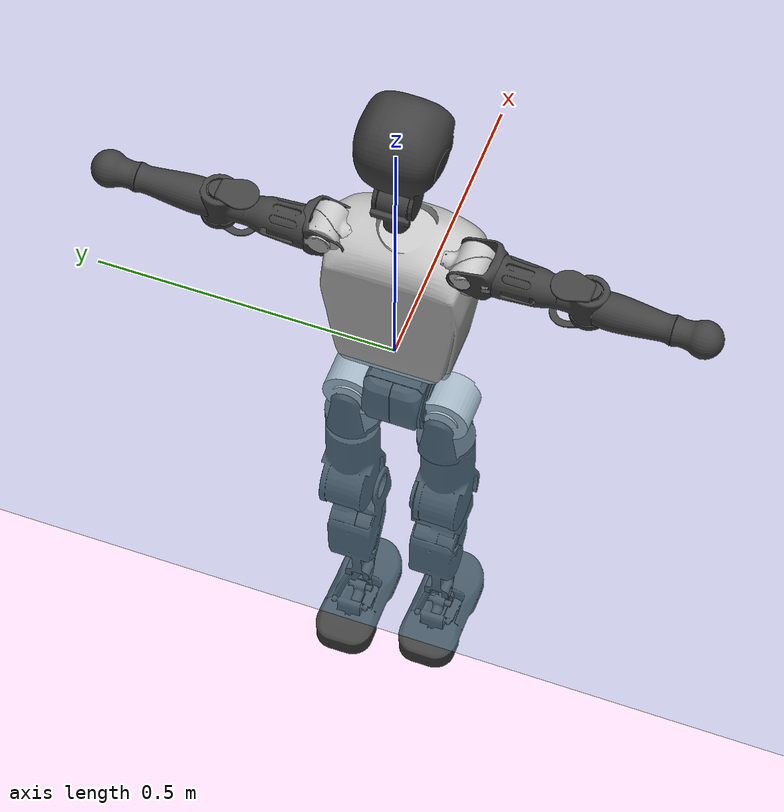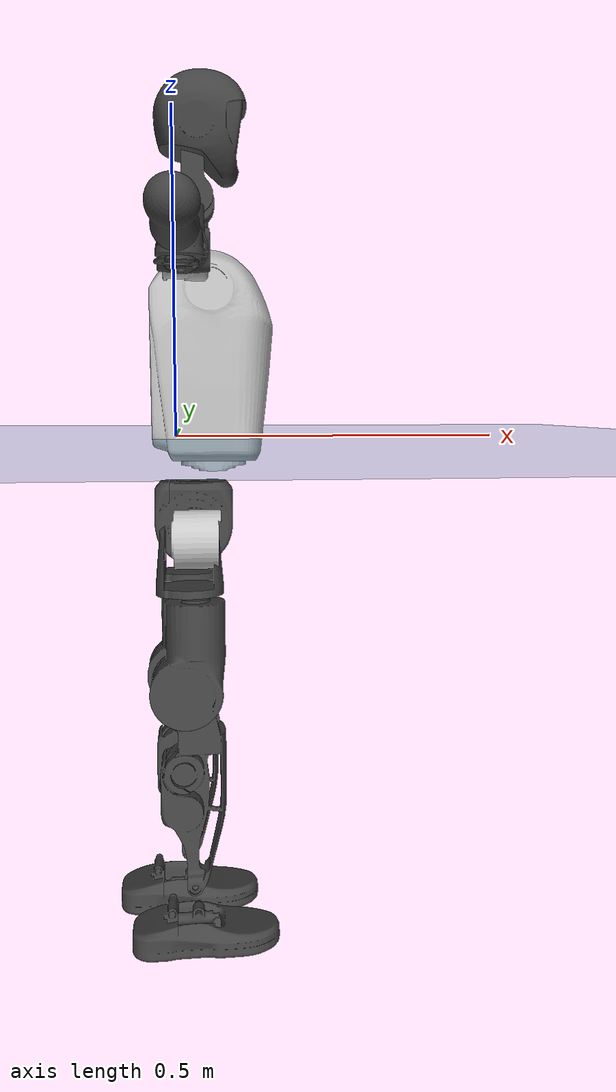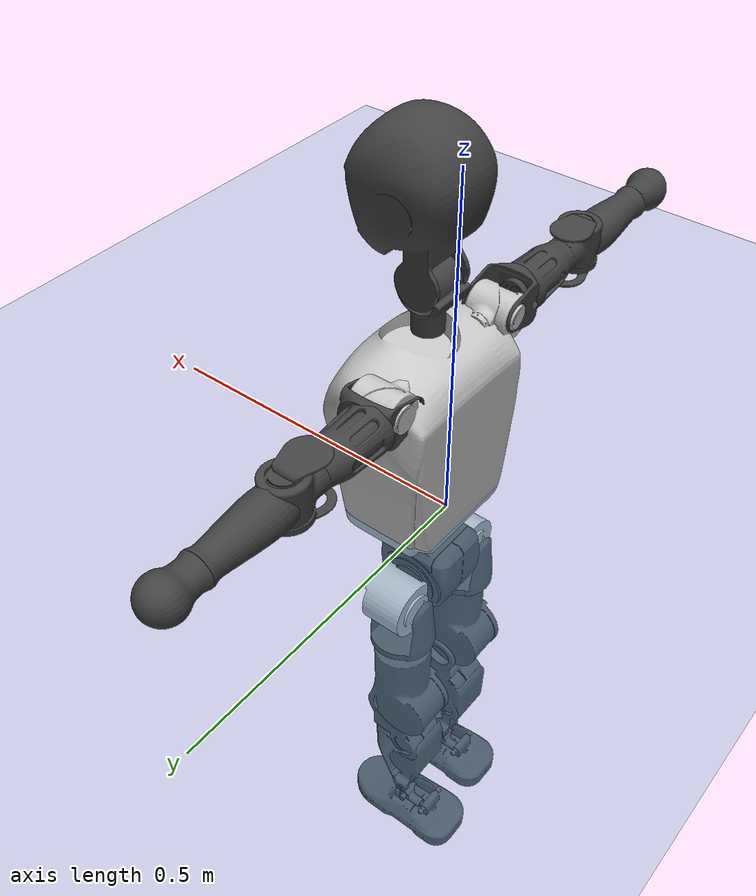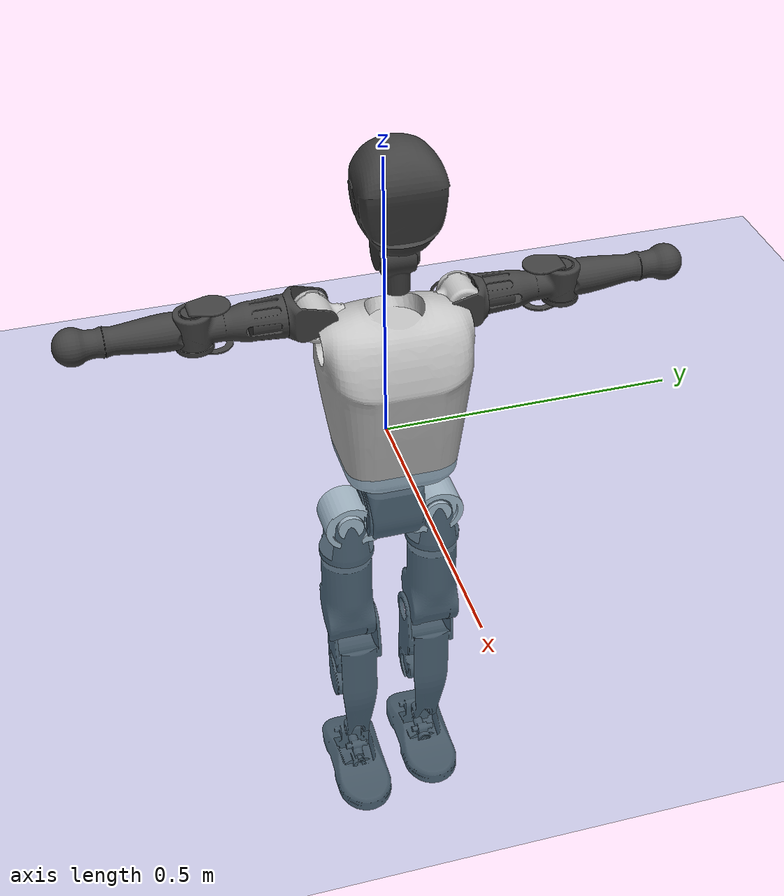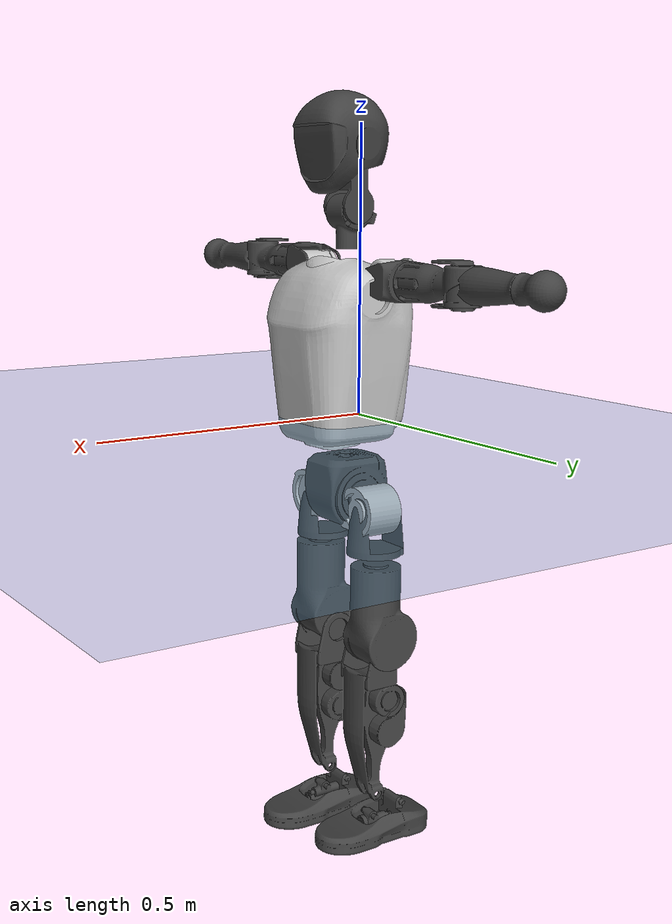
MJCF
<mujoco model="T1">
  <compiler angle="radian" assetdir="assets" balanceinertia="true" inertiafromgeom="false"/>

  <option timestep="0.005" density="1.2" viscosity="2e-05"/>

  <size nkey="1"/>

  <visual>
    <quality shadowsize="8192"/>
    <map shadowclip="0.5"/>
  </visual>

  <default>
    <default class="/">
      <joint armature="0.01" damping="0.01" frictionloss="0.1"/>
      <geom contype="0" conaffinity="0" group="1" solref="-1000 -80"/>
      <site size="0.01 0.005 0.005" group="5"/>
      <general forcelimited="true" biastype="affine" gainprm="25" biasprm="0 -25 -0.6"/>
      <default class="t1">
        <geom rgba="0.25 0.25 0.25 1"/>
        <default class="visual">
          <geom type="mesh" group="2"/>
        </default>
        <default class="collision">
          <geom group="3"/>
        </default>
        <default class="foot">
          <geom size="0.1115 0.05 0.015" type="box" condim="6" group="4" priority="1" solimp="0.015 1 0.015"/>
        </default>
        <default class="reward_collision_sphere">
          <geom group="5" rgba="1 0 0 1"/>
        </default>
      </default>
    </default>
  </default>

  <asset>
    <texture type="skybox" colorspace="auto" name="//unnamed_texture_0" builtin="gradient" rgb1="0.95 0.95 0.95" rgb2="0.95 0.95 0.95" width="100" height="600"/>
    <texture type="2d" colorspace="auto" name="texplane" builtin="checker" rgb1="0.345 0.575 0.748" rgb2="0.345 0.575 0.748" markrgb="1 1 1" width="512" height="512"/>
    <material name="MatPlane" class="/" texture="texplane" texuniform="true" texrepeat="2 2" specular="0.9"/>
    <mesh name="Trunk" class="/" file="Trunk.stl"/>
    <mesh name="H1" class="/" file="H1.stl"/>
    <mesh name="H2" class="/" file="H2.stl"/>
    <mesh name="AL1" class="/" file="AL1.stl"/>
    <mesh name="AL2" class="/" file="AL2.stl"/>
    <mesh name="AL3" class="/" file="AL3.stl"/>
    <mesh name="left_hand_link" class="/" file="left_hand_link.stl"/>
    <mesh name="AR1" class="/" file="AR1.stl"/>
    <mesh name="AR2" class="/" file="AR2.stl"/>
    <mesh name="AR3" class="/" file="AR3.stl"/>
    <mesh name="right_hand_link" class="/" file="right_hand_link.stl"/>
    <mesh name="Waist" class="/" file="Waist.stl"/>
    <mesh name="Hip_Pitch_Left" class="/" file="Hip_Pitch_Left.stl"/>
    <mesh name="Hip_Roll_Left" class="/" file="Hip_Roll_Left.stl"/>
    <mesh name="Hip_Yaw_Left" class="/" file="Hip_Yaw_Left.stl"/>
    <mesh name="Shank_Left" class="/" file="Shank_Left.stl"/>
    <mesh name="Ankle_Cross_Left" class="/" file="Ankle_Cross_Left.stl"/>
    <mesh name="left_foot_link" class="/" file="left_foot_link.stl"/>
    <mesh name="Hip_Pitch_Right" class="/" file="Hip_Pitch_Right.stl"/>
    <mesh name="Hip_Roll_Right" class="/" file="Hip_Roll_Right.stl"/>
    <mesh name="Hip_Yaw_Right" class="/" file="Hip_Yaw_Right.stl"/>
    <mesh name="Shank_Right" class="/" file="Shank_Right.stl"/>
    <mesh name="Ankle_Cross_Right" class="/" file="Ankle_Cross_Right.stl"/>
    <mesh name="right_foot_link" class="/" file="right_foot_link.stl"/>
  </asset>

  <worldbody>
    <geom name="floor" class="/" size="100 100 0.125" type="plane" group="0" material="MatPlane"/>
    <light name="toplight_shadow" class="/" pos="0 0 5" dir="0.0990148 0.0990148 -0.990148" type="directional" ambient="0.04 0.04 0.04" diffuse="0.55 0.55 0.55" specular="0.12 0.12 0.12"/>
    <light name="toplight_fill" class="/" pos="0 0 5" dir="0.0990148 0.0990148 -0.990148" type="directional" castshadow="false" ambient="0.04 0.04 0.04" diffuse="0.3 0.3 0.3" specular="0.08 0.08 0.08"/>
    <body name="trunk" childclass="t1" pos="-0.00516323 0.000842587 -0.00177294" quat="1 8.55863e-05 -0.000220335 -0.000115033">
      <inertial pos="0.0233974 -0.00211773 0.125403" quat="0.999926 0.002492 -0.0101132 -0.00626071" mass="5.04212" diaginertia="0.00125166 0.0184426 0.111904"/>
      <joint name="//unnamed_joint_0" type="free" armature="0" damping="0" frictionloss="0"/>
      <geom name="//unnamed_geom_1" class="visual" rgba="0.76 0.76 0.76 1" mesh="Trunk"/>
      <geom name="//unnamed_geom_2" class="collision" size="0.0586588 0.0782118 0.117318" pos="0.0259606 0 0.139176" type="box"/>
      <geom name="//unnamed_geom_3" class="reward_collision_sphere" size="0.0899435" pos="0.0259606 0 0.11598"/>
      <geom name="//unnamed_geom_4" class="reward_collision_sphere" size="0.0117318" pos="0.0259606 0.0640797 0"/>
      <geom name="//unnamed_geom_5" class="reward_collision_sphere" size="0.0117318" pos="0.0259606 -0.0640797 0"/>
      <geom name="//unnamed_geom_6" class="reward_collision_sphere" size="0.0117318" pos="0.0259606 0.0806651 0.208763"/>
      <geom name="//unnamed_geom_7" class="reward_collision_sphere" size="0.0117318" pos="0.0259606 -0.0806651 0.208763"/>
      <site name="imu" pos="0.0466158 0.012531 -0.0302328" size="0.00782118"/>
      <camera name="track" pos="0 -1.50776 0" quat="0.707107 0.707107 0 0" mode="trackcom"/>
      <camera name="ego_camera" pos="0.0527866 0 0.487115" quat="-0.5 -0.5 0.5 0.5"/>
      <body name="H1" pos="0.037765 0.00970306 0.292527" quat="1 0.000327839 -0.00010905 3.26772e-05">
        <inertial pos="0.00401057 -0.00389214 0.0697144" quat="0.767244 -0.0493171 0.0318073 0.638665" mass="0.189505" diaginertia="3.66556e-06 5.99364e-05 0.000301111"/>
        <joint name="AAHead_yaw" pos="0 0 0" axis="-0.0279454 -0.0349781 0.998997" range="-1.6032 1.54467" armature="0.00496878" damping="0" frictionloss="0.0630136"/>
        <geom name="//unnamed_geom_8" class="visual" mesh="H1"/>
        <body name="H2" pos="-0.00196023 -0.00201551 0.071544" quat="0.999994 -0.000231673 0.00162547 -0.00310371">
          <inertial pos="0.00243562 0.0111058 0.112883" quat="0.9885 0.105714 -0.0752041 -0.077698" mass="0.277893" diaginertia="3.19905e-05 0.00048319 0.00349115"/>
          <joint name="Head_pitch" pos="0 0 0" axis="-0.00283647 -0.999996 -0.000439375" stiffness="0.0182121" range="-1.23529 0.336979" armature="0.00594564" damping="0.00111909" frictionloss="0.0784199"/>
          <geom name="//unnamed_geom_9" class="visual" mesh="H2"/>
          <geom name="//unnamed_geom_10" class="collision" size="0.0625694" pos="0.00432677 0 0.127578"/>
          <geom name="//unnamed_geom_11" class="reward_collision_sphere" size="0.0703906" pos="0.00865353 0 0.11598"/>
        </body>
      </body>
      <body name="AL1" pos="0.0228519 0.0715184 0.249467" quat="1 6.55861e-05 0.000734411 0.000133478">
        <inertial pos="0.00957998 0.0244599 0.00655435" quat="0.505065 0.494876 -0.503279 0.496707" mass="0.231363" diaginertia="1.86312e-05 0.000284399 0.000571164"/>
        <joint name="Left_Shoulder_Pitch" pos="0 0 0" axis="-0.0267213 0.999638 -0.00313242" range="-3.36257 1.2252" armature="0.00614013" damping="0" frictionloss="0.0997524"/>
        <geom name="//unnamed_geom_12" class="visual" rgba="0.76 0.76 0.76 1" mesh="AL1"/>
        <body name="AL2" pos="0.00268367 0.0277058 -0.00524209" quat="0.999999 0.000403521 -0.000852972 0.000358317">
          <inertial pos="0.00219368 0.0288287 -0.00368702" quat="0.488454 0.512308 -0.486702 0.511933" mass="0.0735708" diaginertia="4.94092e-06 6.49416e-05 0.000348032"/>
          <joint name="Left_Shoulder_Roll" pos="0 0 0" axis="-0.999929 0.00463819 0.0109722" range="-1.67755 1.90355" armature="0.00764986" damping="0" frictionloss="0.0729136"/>
          <geom name="//unnamed_geom_13" class="visual" mesh="AL2"/>
          <body name="AL3" pos="-0.00928939 0.0445031 -0.000573479" quat="0.999997 0.00151981 0.000936605 0.0015238">
            <inertial pos="-0.000855342 0.0642203 -0.00714393" quat="0.710812 0.702565 -0.0230755 -0.0248214" mass="0.479211" diaginertia="0.00017597 0.00308892 0.00129737"/>
            <joint name="Left_Elbow_Pitch" pos="0 0 0" axis="0.00198658 -0.999973 -0.00708986" stiffness="0.00605164" range="-2.30318 2.12056" armature="0.010842" damping="0.0182748" frictionloss="0.0709758"/>
            <geom name="//unnamed_geom_14" class="visual" mesh="AL3"/>
            <geom name="//unnamed_geom_15" class="collision" size="0.0234635 0.0586588" pos="0 0.037694 0" quat="0.707105 0.707108 0 0" type="cylinder"/>
            <geom name="//unnamed_geom_16" class="reward_collision_sphere" size="0.0281562"/>
            <body name="left_hand_link" pos="-0.00169392 0.110903 0.00201079" quat="0.999995 0.00277228 0.00155884 0.000399904">
              <inertial pos="-0.0110935 0.0901375 -0.000334772" quat="0.70728 0.706878 0.00848386 -0.00251235" mass="0.164002" diaginertia="0.000118706 0.00193507 0.000491618"/>
              <joint name="Left_Elbow_Yaw" pos="0 0 0" axis="0.0174269 -0.0194455 0.999659" range="-2.51339 0.0906233" armature="0.00504473" damping="0" frictionloss="0.0516981"/>
              <geom name="//unnamed_geom_17" class="visual" mesh="left_hand_link"/>
              <geom name="//unnamed_geom_18" class="collision" size="0.0234635 0.0684353" pos="0 0.0980043 0" quat="0.707105 0.707108 0 0" type="cylinder"/>
              <geom name="//unnamed_geom_19" class="reward_collision_sphere" size="0.0391059"/>
              <geom name="//unnamed_geom_20" class="reward_collision_sphere" size="0.0273741" pos="0 0.0829267 0"/>
              <geom name="//unnamed_geom_21" class="reward_collision_sphere" size="0.0273741" pos="0 0.162084 0"/>
            </body>
          </body>
        </body>
      </body>
      <body name="AR1" pos="0.0233903 -0.0716512 0.255469" quat="0.999998 -0.00181924 -0.000287482 0.000128177">
        <inertial pos="-0.0035481 -0.0352621 -0.000482235" quat="0.502723 0.494278 -0.505427 0.497497" mass="0.24652" diaginertia="2.09732e-05 0.000308107 0.000595107"/>
        <joint name="Right_Shoulder_Pitch" pos="0 0 0" axis="-0.00153286 -0.999997 -0.00183501" range="-1.1854 3.28627" armature="0.00593492" damping="0.0517112" frictionloss="0.0946798"/>
        <geom name="//unnamed_geom_22" class="visual" rgba="0.76 0.76 0.76 1" mesh="AR1"/>
        <body name="AR2" pos="-0.00194748 -0.0381515 0.00879982" quat="1 1.08726e-05 0.000209954 -8.4424e-05">
          <inertial pos="0.00577743 -0.0351902 0.00992423" quat="0.513046 0.489558 -0.515464 0.481055" mass="0.0729982" diaginertia="5.65162e-06 8.81377e-05 0.000335736"/>
          <joint name="Right_Shoulder_Roll" pos="0 0 0" axis="-0.999925 -0.00427482 -0.0114612" stiffness="0.039177" range="-1.94495 1.55347" armature="0.0068615" damping="0" frictionloss="0.0708122"/>
          <geom name="//unnamed_geom_23" class="visual" mesh="AR2"/>
          <body name="AR3" pos="-0.00265772 -0.0506379 -0.00122758" quat="1 0.000685454 0.000176778 -0.000653978">
            <inertial pos="0.00895735 -0.0660846 -0.000706067" quat="0.698175 0.715808 0.0128279 0.0025939" mass="0.492214" diaginertia="0.000195943 0.00314028 0.00116028"/>
            <joint name="Right_Elbow_Pitch" pos="0 0 0" axis="0.0175296 0.999846 -0.000418191" stiffness="0.0338964" range="-2.27738 2.36877" armature="0.00729356" damping="0.00367954" frictionloss="0.113972"/>
            <geom name="//unnamed_geom_24" class="visual" mesh="AR3"/>
            <geom name="//unnamed_geom_25" class="collision" size="0.0234635 0.0586588" pos="0 -0.037694 0" quat="0.707105 0.707108 0 0" type="cylinder"/>
            <geom name="//unnamed_geom_26" class="reward_collision_sphere" size="0.0281562"/>
            <body name="right_hand_link" pos="-0.00491 -0.115119 0.00037231" quat="0.999999 0.00107018 -0.000406059 0.00013544">
              <inertial pos="0.00136594 -0.082979 -0.00704789" quat="0.705032 0.709175 -0.000776852 -0.000989008" mass="0.151168" diaginertia="0.000122139 0.00215603 0.000460618"/>
              <joint name="Right_Elbow_Yaw" pos="0 0 0" axis="0.00394796 0.0023406 0.999989" range="-0.090243 2.47236" armature="0.00830614" damping="0.0141218" frictionloss="0.111719"/>
              <geom name="//unnamed_geom_27" class="visual" mesh="right_hand_link"/>
              <geom name="//unnamed_geom_28" class="collision" size="0.0234635 0.0684353" pos="0 -0.0980043 0" quat="0.707105 0.707108 0 0" type="cylinder"/>
              <geom name="//unnamed_geom_29" class="reward_collision_sphere" size="0.0391059"/>
              <geom name="//unnamed_geom_30" class="reward_collision_sphere" size="0.0273741" pos="0 -0.0829267 0"/>
              <geom name="//unnamed_geom_31" class="reward_collision_sphere" size="0.0273741" pos="0 -0.162084 0"/>
            </body>
          </body>
        </body>
      </body>
      <body name="Waist" pos="0.031157 -0.00283079 -0.134484" quat="1 -7.96899e-05 7.02623e-05 -9.82525e-05">
        <inertial pos="0.0030724 -0.00232334 0.0069357" quat="0.982513 -0.0130452 -0.184929 0.0172959" mass="1.34527" diaginertia="7.16734e-05 0.00131235 0.00874885"/>
        <joint name="Waist" pos="0 0 0" axis="-0.0286095 0.0181335 0.999426" range="-1.48091 1.65674" armature="0.00834572" damping="0" frictionloss="0.111417"/>
        <geom name="//unnamed_geom_32" class="visual" mesh="Waist"/>
        <body name="Hip_Pitch_Left" pos="0.00170179 0.0789698 0.00106081" quat="0.999999 -0.00112183 -0.000268898 -0.000678504">
          <inertial pos="7.27509e-05 0.00138665 -0.0228752" quat="0.972252 0.233543 0.0106865 -0.0083854" mass="0.480979" diaginertia="2.82454e-05 0.000317632 0.00228434"/>
          <joint name="Left_Hip_Pitch" pos="0 0 0" axis="-0.00298994 0.999992 0.00252367" range="-1.77266 1.56418" armature="0.00593952" damping="0" frictionloss="0.0805703"/>
          <geom name="//unnamed_geom_33" class="visual" rgba="0.76 0.76 0.76 1" mesh="Hip_Pitch_Left"/>
          <body name="Hip_Roll_Left" pos="-0.00881566 -0.000177601 -0.0223703" quat="0.999992 0.000700327 -0.00316321 0.00230868">
            <inertial pos="-0.00470479 0.0021352 -0.0629093" quat="0.709892 0.00259781 -0.00467489 0.70429" mass="0.224934" diaginertia="3.35836e-05 0.000416141 0.00122498"/>
            <joint name="Left_Hip_Roll" pos="0 0 0" axis="-0.999283 -0.0364729 -0.0101238" range="-1.75615 0.163905" armature="0.00949025" damping="0.0251723" frictionloss="0.0870337"/>
            <geom name="//unnamed_geom_34" class="visual" mesh="Hip_Roll_Left"/>
            <geom name="//unnamed_geom_35" class="reward_collision_sphere" size="0.0430165"/>
            <body name="Hip_Yaw_Left" pos="-0.00399639 0.00125598 -0.0990802" quat="0.999992 -0.00366516 0.00163762 -0.000651557">
              <inertial pos="0.00649442 0.000117339 -0.102314" quat="0.697827 -0.0337241 -0.0327227 0.714723" mass="1.00277" diaginertia="0.000342111 0.00625232 0.0055131"/>
              <joint name="Left_Hip_Yaw" pos="0 0 0" axis="-0.00377214 0.0010227 -0.999992" stiffness="0.0418355" range="-1.20359 0.844223" armature="0.00763516" damping="0.0118012" frictionloss="0.0501252"/>
              <geom name="//unnamed_geom_36" class="visual" mesh="Hip_Yaw_Left"/>
              <geom name="//unnamed_geom_37" class="collision" size="0.0391059 0.0625694" type="cylinder"/>
              <body name="Shank_Left" pos="-0.00555975 -0.00877212 -0.153702" quat="1 0.000166333 -2.08967e-05 9.61252e-05">
                <inertial pos="0.00750706 -0.00061966 -0.145413" quat="0.996134 0.0329607 -0.0615804 0.0532837" mass="0.894872" diaginertia="0.000540686 0.00743402 0.00372317"/>
                <joint name="Left_Knee_Pitch" pos="0 0 0" axis="0.0213902 0.999327 -0.0297987" range="0.0337 2.21124" armature="0.0100568" damping="0.00731804" frictionloss="0.0413999"/>
                <geom name="//unnamed_geom_38" class="visual" mesh="Shank_Left"/>
                <geom name="//unnamed_geom_39" class="collision" size="0.0391059 0.0586588" pos="0 0 -0.139176" type="cylinder"/>
                <geom name="//unnamed_geom_40" class="reward_collision_sphere" size="0.0508376"/>
                <body name="Ankle_Cross_Left" pos="0.000363959 -0.00140776 -0.327463" quat="1 0.000250855 0.000201472 -0.000375169">
                  <inertial pos="-0.000115731 8.84546e-05 -0.0107768" quat="0.447941 0.546656 0.553201 0.441005" mass="0.0334407" diaginertia="4.0269e-07 5.98023e-06 2.27194e-05"/>
                  <joint name="Left_Ankle_Pitch" pos="0 0 0" axis="0.0209124 0.999526 0.0225993" stiffness="0.00767083" range="-0.884485 0.456722" armature="0.00384472" damping="0.00413904" frictionloss="0.0894431"/>
                  <geom name="//unnamed_geom_41" class="visual" mesh="Ankle_Cross_Left"/>
                  <body name="left_foot_link" pos="-0.0102821 9.36106e-05 -0.0112639" quat="1 -8.4839e-05 1.46993e-05 -3.20148e-05">
                    <inertial pos="0.00917266 -0.00514921 -0.010321" quat="0.00343254 0.618084 -0.00182644 0.786102" mass="0.331929" diaginertia="4.06587e-05 0.000589106 0.00511821"/>
                    <joint name="Left_Ankle_Roll" pos="0 0 0" axis="-0.999927 0.010974 -0.004992" range="-0.5278 0.506352" armature="0.00753336" damping="0.0584599" frictionloss="0.0743578"/>
                    <geom name="//unnamed_geom_42" class="visual" mesh="left_foot_link"/>
                    <geom name="left_foot" class="foot" size="0.1001 0.0510412 0.0135152" pos="0.00432677 0 -0.017397"/>
                    <geom name="//unnamed_geom_44" class="reward_collision_sphere" size="0.0406701" pos="0.00432677 0 -0.017397"/>
                    <geom name="//unnamed_geom_45" class="reward_collision_sphere" size="0.0234635" pos="0.0411043 -0.0173392 -0.017397"/>
                    <geom name="//unnamed_geom_46" class="reward_collision_sphere" size="0.0234635" pos="-0.0302874 -0.0173392 -0.017397"/>
                    <site name="left_foot" class="foot" pos="0.00432677 0 -0.017397" size="0.00782118"/>
                  </body>
                </body>
              </body>
            </body>
          </body>
        </body>
        <body name="Hip_Pitch_Right" pos="0.00458101 -0.0780456 0.00513419" quat="1 -0.000299892 -0.000226873 -0.000210198">
          <inertial pos="-0.00064424 0.00584042 -0.0131688" quat="0.973616 -0.227943 0.0101505 -0.00323374" mass="0.494464" diaginertia="3.0573e-05 0.00031574 0.00251215"/>
          <joint name="Right_Hip_Pitch" pos="0 0 0" axis="0.00429457 -0.999903 -0.0132594" stiffness="0.0118754" range="-1.34831 1.60562" armature="0.00897289" damping="0" frictionloss="0.113752"/>
          <geom name="//unnamed_geom_47" class="visual" rgba="0.76 0.76 0.76 1" mesh="Hip_Pitch_Right"/>
          <body name="Hip_Roll_Right" pos="-0.00931351 -4.24113e-06 -0.0244776" quat="0.999998 0.00144561 -0.000220918 -0.00149457">
            <inertial pos="0.00163134 0.00656509 -0.0691293" quat="0.705503 -0.00918783 -0.00910607 0.708589" mass="0.200814" diaginertia="2.84817e-05 0.000412842 0.00104638"/>
            <joint name="Right_Hip_Roll" pos="0 0 0" axis="-0.99897 0.0409939 -0.0194638" range="-0.17819 1.5696" armature="0.00994371" damping="0" frictionloss="0.079465"/>
            <geom name="//unnamed_geom_48" class="visual" mesh="Hip_Roll_Right"/>
            <geom name="//unnamed_geom_49" class="reward_collision_sphere" size="0.0430165"/>
            <body name="Hip_Yaw_Right" pos="0.00479317 -0.00225626 -0.0879309" quat="1 2.09921e-05 -6.48033e-05 -1.09239e-05">
              <inertial pos="-0.00661031 -0.00869537 -0.0989887" quat="0.699193 -0.0797746 -0.020739 0.710166" mass="1.03311" diaginertia="0.000382773 0.00633115 0.00553445"/>
              <joint name="Right_Hip_Yaw" pos="0 0 0" axis="0.00464044 0.00116079 -0.999989" stiffness="0.00469804" range="-0.984244 0.989136" armature="0.00737808" damping="0.000369413" frictionloss="0.0799629"/>
              <geom name="//unnamed_geom_50" class="visual" mesh="Hip_Yaw_Right"/>
              <geom name="//unnamed_geom_51" class="collision" size="0.0391059 0.0625694" type="cylinder"/>
              <body name="Shank_Right" pos="-0.00570948 0.00923741 -0.162289" quat="1 0.000544809 -0.000560872 0.000125729">
                <inertial pos="0.00719392 -0.0110194 -0.139243" quat="0.998156 0.0294681 -0.0227405 -0.0479499" mass="0.786219" diaginertia="0.000587841 0.00922994 0.00432722"/>
                <joint name="Right_Knee_Pitch" pos="0 0 0" axis="-7.59443e-06 -1 -2.60659e-06" range="-2.26514 0.0226959" armature="0.00769964" damping="0.00755588" frictionloss="0.0895064"/>
                <geom name="//unnamed_geom_52" class="visual" mesh="Shank_Right"/>
                <geom name="//unnamed_geom_53" class="collision" size="0.0391059 0.0586588" pos="0 0 -0.139176" type="cylinder"/>
                <geom name="//unnamed_geom_54" class="reward_collision_sphere" size="0.0508376"/>
                <body name="Ankle_Cross_Right" pos="0.0044251 -0.0014911 -0.324749" quat="1 0.000713906 -3.21432e-05 0.000585755">
                  <inertial pos="-0.000831544 0.00760126 -0.0100763" quat="0.451929 0.545271 0.520147 0.477374" mass="0.0338557" diaginertia="4.29662e-07 7.771e-06 2.56102e-05"/>
                  <joint name="Right_Ankle_Pitch" pos="0 0 0" axis="0.00617444 -0.999547 -0.0294621" range="-0.417288 0.869914" armature="0.00536294" damping="0.0480883" frictionloss="0.0707009"/>
                  <geom name="//unnamed_geom_55" class="visual" mesh="Ankle_Cross_Right"/>
                  <body name="right_foot_link" pos="0.00182508 -0.00235044 -0.0223598" quat="1 -2.944e-06 7.85137e-05 5.23832e-05">
                    <inertial pos="0.000253353 -0.00194478 -0.0187802" quat="0.00168947 0.605736 0.012223 0.79557" mass="0.324945" diaginertia="3.66693e-05 0.000566903 0.00444929"/>
                    <joint name="Right_Ankle_Roll" pos="0 0 0" axis="-0.999945 0.00847296 0.00612919" range="-0.477236 0.536409" armature="0.00798452" damping="0" frictionloss="0.0987206"/>
                    <geom name="//unnamed_geom_56" class="visual" mesh="right_foot_link"/>
                    <geom name="right_foot" class="foot" size="0.0932335 0.0416453 0.0109612" pos="0.00432677 0 -0.017397"/>
                    <geom name="//unnamed_geom_58" class="reward_collision_sphere" size="0.0312847"/>
                    <geom name="//unnamed_geom_59" class="reward_collision_sphere" size="0.0234635" pos="0.00432677 0 -0.017397"/>
                    <geom name="//unnamed_geom_60" class="reward_collision_sphere" size="0.0234635" pos="0.0411043 0.0173392 -0.017397"/>
                    <geom name="//unnamed_geom_61" class="reward_collision_sphere" size="0.0234635" pos="-0.0302874 0.0173392 -0.017397"/>
                    <site name="right_foot" class="foot" pos="0.00432677 0 -0.017397" size="0.00782118"/>
                  </body>
                </body>
              </body>
            </body>
          </body>
        </body>
      </body>
    </body>
  </worldbody>

  <contact>
    <pair class="/" geom1="floor" geom2="left_foot" name="//unnamed_contact_0"/>
    <pair class="/" geom1="floor" geom2="right_foot" name="//unnamed_contact_1"/>
  </contact>

  <actuator>
    <general name="AAHead_yaw" class="/" joint="AAHead_yaw" forcerange="-4.33149 4.33149" gainprm="18.5808" biasprm="0 -18.5808 -0.551188"/>
    <general name="Head_pitch" class="/" joint="Head_pitch" forcerange="-5.53915 5.53915" gainprm="18.5808" biasprm="0 -18.5808 -0.551188"/>
    <general name="Left_Shoulder_Pitch" class="/" joint="Left_Shoulder_Pitch" forcerange="-15.0372 15.0372" gainprm="18.5808" biasprm="0 -18.5808 -0.551188"/>
    <general name="Left_Shoulder_Roll" class="/" joint="Left_Shoulder_Roll" forcerange="-13.0045 13.0045" gainprm="18.5808" biasprm="0 -18.5808 -0.551188"/>
    <general name="Left_Elbow_Pitch" class="/" joint="Left_Elbow_Pitch" forcerange="-10.8738 10.8738" gainprm="18.5808" biasprm="0 -18.5808 -0.551188"/>
    <general name="Left_Elbow_Yaw" class="/" joint="Left_Elbow_Yaw" forcerange="-11.9937 11.9937" gainprm="18.5808" biasprm="0 -18.5808 -0.551188"/>
    <general name="Right_Shoulder_Pitch" class="/" joint="Right_Shoulder_Pitch" forcerange="-15.5321 15.5321" gainprm="18.5808" biasprm="0 -18.5808 -0.551188"/>
    <general name="Right_Shoulder_Roll" class="/" joint="Right_Shoulder_Roll" forcerange="-14.2522 14.2522" gainprm="18.5808" biasprm="0 -18.5808 -0.551188"/>
    <general name="Right_Elbow_Pitch" class="/" joint="Right_Elbow_Pitch" forcerange="-14.1248 14.1248" gainprm="18.5808" biasprm="0 -18.5808 -0.551188"/>
    <general name="Right_Elbow_Yaw" class="/" joint="Right_Elbow_Yaw" forcerange="-13.8581 13.8581" gainprm="18.5808" biasprm="0 -18.5808 -0.551188"/>
    <general name="Waist" class="/" joint="Waist" forcerange="-23.2503 23.2503" gainprm="18.5808" biasprm="0 -18.5808 -0.551188"/>
    <general name="Left_Hip_Pitch" class="/" joint="Left_Hip_Pitch" forcerange="-34.4879 34.4879" gainprm="18.5808" biasprm="0 -18.5808 -0.551188"/>
    <general name="Left_Hip_Roll" class="/" joint="Left_Hip_Roll" forcerange="-23.9343 23.9343" gainprm="18.5808" biasprm="0 -18.5808 -0.551188"/>
    <general name="Left_Hip_Yaw" class="/" joint="Left_Hip_Yaw" forcerange="-28.9691 28.9691" gainprm="18.5808" biasprm="0 -18.5808 -0.551188"/>
    <general name="Left_Knee_Pitch" class="/" joint="Left_Knee_Pitch" forcerange="-41.0945 41.0945" gainprm="18.5808" biasprm="0 -18.5808 -0.551188"/>
    <general name="Left_Ankle_Pitch" class="/" joint="Left_Ankle_Pitch" forcerange="-17.7286 17.7286" gainprm="18.5808" biasprm="0 -18.5808 -0.551188"/>
    <general name="Left_Ankle_Roll" class="/" joint="Left_Ankle_Roll" forcerange="-10.8799 10.8799" gainprm="18.5808" biasprm="0 -18.5808 -0.551188"/>
    <general name="Right_Hip_Pitch" class="/" joint="Right_Hip_Pitch" forcerange="-33.1752 33.1752" gainprm="18.5808" biasprm="0 -18.5808 -0.551188"/>
    <general name="Right_Hip_Roll" class="/" joint="Right_Hip_Roll" forcerange="-22.8236 22.8236" gainprm="18.5808" biasprm="0 -18.5808 -0.551188"/>
    <general name="Right_Hip_Yaw" class="/" joint="Right_Hip_Yaw" forcerange="-24.7651 24.7651" gainprm="18.5808" biasprm="0 -18.5808 -0.551188"/>
    <general name="Right_Knee_Pitch" class="/" joint="Right_Knee_Pitch" forcerange="-58.3671 58.3671" gainprm="18.5808" biasprm="0 -18.5808 -0.551188"/>
    <general name="Right_Ankle_Pitch" class="/" joint="Right_Ankle_Pitch" forcerange="-20.365 20.365" gainprm="18.5808" biasprm="0 -18.5808 -0.551188"/>
    <general name="Right_Ankle_Roll" class="/" joint="Right_Ankle_Roll" forcerange="-11.1451 11.1451" gainprm="18.5808" biasprm="0 -18.5808 -0.551188"/>
  </actuator>

  <sensor>
    <gyro site="imu" name="imu_angular_velocity"/>
    <velocimeter site="imu" name="imu_linear_velocity"/>
    <framelinvel objtype="site" objname="left_foot" name="left_foot_global_linear_velocity"/>
    <framelinvel objtype="site" objname="right_foot" name="right_foot_global_linear_velocity"/>
  </sensor>

  <keyframe>
    <key name="home" qpos="0 0 0.6385 1 0 0 0 0 0 0 1.4 0 -0.4 0 -1.4 0 0.4 0 -0.4 0 0 0.8 -0.4 0 0.4 0 0 -0.8 0.4 0"/>
  </keyframe>
</mujoco>
